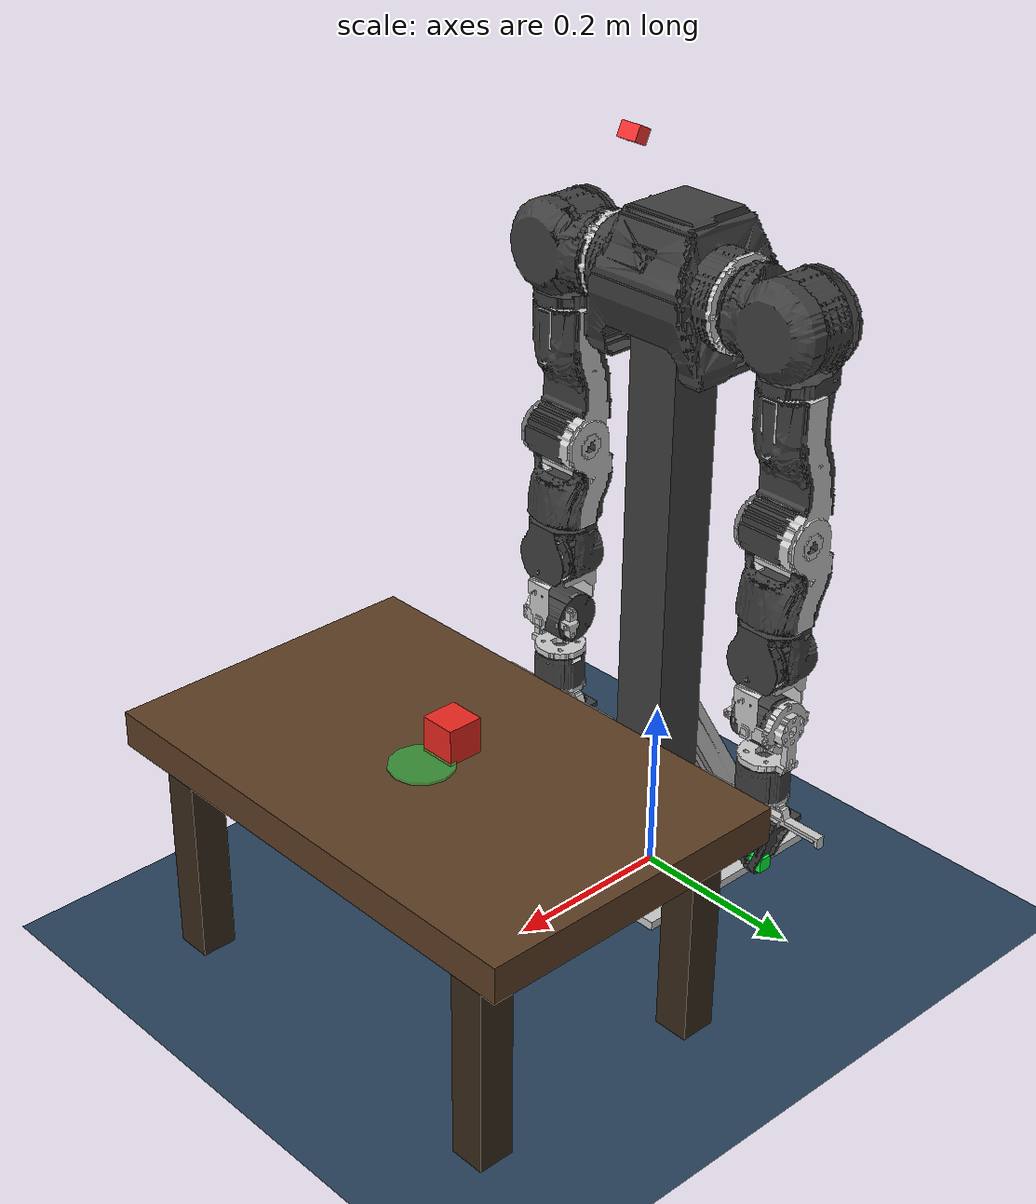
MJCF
<mujoco model="openarm_bimanual_pick_place scene">
  <include file="openarm_bimanual.xml"/>

  <statistic center="0.18 0 0.32" extent=".9" meansize="0.05"/>

  <visual>
    <headlight diffuse="0.6 0.6 0.6" ambient="0.3 0.3 0.3" specular="0 0 0"/>
    <rgba haze="0.15 0.25 0.35 1"/>
    <global azimuth="160" elevation="-10" offwidth="2048" offheight="1536"/>
    <quality shadowsize="4096"/>
  </visual>

  <asset>
    <texture
      type="skybox"
      builtin="gradient"
      rgb1="0.3 0.5 0.7"
      rgb2="0 0 0"
      width="512"
      height="3072"
    />
    <texture
      type="2d"
      name="groundplane"
      builtin="checker"
      mark="edge"
      rgb1="0.2 0.3 0.4"
      rgb2="0.1 0.2 0.3"
      markrgb="0.8 0.8 0.8"
      width="300"
      height="300"
    />
    <material
      name="groundplane"
      texture="groundplane"
      texuniform="true"
      texrepeat="5 5"
      reflectance="0.2"
    />
    <material name="tabletop" rgba="0.36 0.24 0.14 1"/>
    <material name="tableleg" rgba="0.22 0.16 0.1 1"/>
  </asset>

  <worldbody>
    <light pos="0 0 1.5" dir="0 0 -1" directional="true"/>
    <geom name="floor" size="0 0 0.05" type="plane" material="groundplane"/>

    <body name="task_table" pos="0 0 0">
      <geom
        name="task_table_top"
        type="box"
        pos="0.32 0.0 0.26"
        size="0.18 0.28 0.02"
        material="tabletop"
        friction="1.2 0.08 0.02"
      />
      <geom
        name="task_table_leg_fl"
        type="box"
        pos="0.46 0.22 0.12"
        size="0.02 0.02 0.12"
        material="tableleg"
      />
      <geom
        name="task_table_leg_fr"
        type="box"
        pos="0.46 -0.22 0.12"
        size="0.02 0.02 0.12"
        material="tableleg"
      />
      <geom
        name="task_table_leg_rl"
        type="box"
        pos="0.18 0.22 0.12"
        size="0.02 0.02 0.12"
        material="tableleg"
      />
      <geom
        name="task_table_leg_rr"
        type="box"
        pos="0.18 -0.22 0.12"
        size="0.02 0.02 0.12"
        material="tableleg"
      />
    </body>

    <body name="task_cube" pos="0.30 0.0 0.30">
      <freejoint name="task_cube_joint"/>
      <geom
        name="task_cube_geom"
        type="box"
        size="0.02 0.02 0.02"
        rgba="0.92 0.15 0.12 1"
        density="550"
        friction="2.0 0.2 0.05"
      />
    </body>

    <body name="place_target" mocap="true" pos="0.34 0.0 0.281">
      <geom
        name="place_target_marker"
        type="cylinder"
        size="0.035 0.002"
        rgba="0.15 0.85 0.3 0.55"
        contype="0"
        conaffinity="0"
      />
    </body>
  </worldbody>
</mujoco>

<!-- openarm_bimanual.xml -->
<mujoco model="openarm">
  <default>
    <joint stiffness="0" ref="0.0" />
    <default class="robot">
      <default class="motor_DM8009">
        <joint frictionloss="0.1" damping="0.4" limited="true" type="hinge" />
        <motor forcelimited="true" forcerange="-40 40" />
      </default>
      <default class="motor_DM4340">
        <joint frictionloss="0.1" damping="0.4" limited="true" type="hinge" />
        <motor forcelimited="true" forcerange="-27 27" />
      </default>
      <default class="motor_DM4310">
        <joint frictionloss="0.1" damping="0.4" limited="true" type="hinge" />
        <motor forcelimited="true" forcerange="-7 7" />
      </default>
      <default class="motor_finger">
        <joint limited="true" type="slide" damping="2" stiffness="0.5" />
        <position forcelimited="true" forcerange="-333 333" ctrllimited="true" ctrlrange="0 0.044"
          kp="100" />
      </default>
      <default class="collision">
        <geom material="collision_material" condim="3" conaffinity="1" priority="1" group="3"
          solref="0.005 1" friction="2 0.2 0.05" />
        <equality solimp="0.99 0.999 1e-05" solref="0.005 1" />
      </default>
      <default class="visual">
        <geom material="visualgeom" contype="0" conaffinity="0" group="2" />
      </default>
    </default>
  </default>

  <compiler angle="radian" meshdir="meshes" />

  <asset>
    <material name="default_material" rgba="0.7 0.7 0.7 1" />
    <material name="collision_material" rgba="1.0 0.28 0.1 0.9" />

    <mesh name="body_collision" file="collision/body/body_link0.stl" scale="0.001 0.001 0.001" />
    <mesh name="link0_collision" file="collision/arm/link0.stl" scale="0.001 0.001 0.001" />
    <mesh name="link0_collision_left" file="collision/arm/link0.stl" scale="0.001 -0.001 0.001" />
    <mesh name="link1_collision" file="collision/arm/link1.stl" scale="0.001 0.001 0.001" />
    <mesh name="link1_collision_left" file="collision/arm/link1.stl" scale="0.001 -0.001 0.001" />
    <mesh name="link2_collision" file="collision/arm/link2.stl" scale="0.001 0.001 0.001" />
    <mesh name="link2_collision_left" file="collision/arm/link2.stl" scale="0.001 -0.001 0.001" />
    <mesh name="link3_collision" file="collision/arm/link3.stl" scale="0.001 0.001 0.001" />
    <mesh name="link3_collision_left" file="collision/arm/link3.stl" scale="0.001 -0.001 0.001" />
    <mesh name="link4_collision" file="collision/arm/link4.stl" scale="0.001 0.001 0.001" />
    <mesh name="link5_collision" file="collision/arm/link5.stl" scale="0.001 0.001 0.001" />
    <mesh name="link5_collision_left" file="collision/arm/link5.stl" scale="0.001 -0.001 0.001" />
    <mesh name="link6_collision" file="collision/arm/link6.stl" scale="0.001 0.001 0.001" />
    <mesh name="link6_collision_left" file="collision/arm/link6.stl" scale="0.001 -0.001 0.001" />
    <mesh name="link7_collision" file="collision/arm/link7.stl" scale="0.001 0.001 0.001" />
    <mesh name="link7_collision_left" file="collision/arm/link7.stl" scale="0.001 -0.001 0.001" />
    <mesh name="hand_collision" file="collision/gripper/hand.stl" scale="0.001 0.001 0.001" />
    <mesh name="finger_collision" file="collision/gripper/finger.stl" scale="0.001 0.001 0.001" />
    <mesh name="finger_collision_left" file="collision/gripper/finger.stl"
      scale="0.001 -0.001 0.001" />

    <mesh name="body_link0_0.obj" file="visual/body/body_link0_0.obj" scale="0.001 0.001 0.001" />
    <mesh name="body_link0_1.obj" file="visual/body/body_link0_1.obj" scale="0.001 0.001 0.001" />
    <mesh name="body_link0_2.obj" file="visual/body/body_link0_2.obj" scale="0.001 0.001 0.001" />
    <mesh name="body_link0_3.obj" file="visual/body/body_link0_3.obj" scale="0.001 0.001 0.001" />
    <mesh name="body_link0_4.obj" file="visual/body/body_link0_4.obj" scale="0.001 0.001 0.001" />
    <mesh name="body_link0_5.obj" file="visual/body/body_link0_5.obj" scale="0.001 0.001 0.001" />

    <mesh name="link0_0.obj" file="visual/arm/link0_0.obj" scale="0.001 0.001 0.001" />
    <mesh name="link0_1.obj" file="visual/arm/link0_1.obj" scale="0.001 0.001 0.001" />
    <mesh name="link1_0.obj" file="visual/arm/link1_0.obj" scale="0.001 0.001 0.001" />
    <mesh name="link1_1.obj" file="visual/arm/link1_1.obj" scale="0.001 0.001 0.001" />
    <mesh name="link1_2.obj" file="visual/arm/link1_2.obj" scale="0.001 0.001 0.001" />
    <mesh name="link1_3.obj" file="visual/arm/link1_3.obj" scale="0.001 0.001 0.001" />
    <mesh name="link2_0.obj" file="visual/arm/link2_0.obj" scale="0.001 0.001 0.001" />
    <mesh name="link2_1.obj" file="visual/arm/link2_1.obj" scale="0.001 0.001 0.001" />
    <mesh name="link2_2.obj" file="visual/arm/link2_2.obj" scale="0.001 0.001 0.001" />
    <mesh name="link3_0.obj" file="visual/arm/link3_0.obj" scale="0.001 0.001 0.001" />
    <mesh name="link3_1.obj" file="visual/arm/link3_1.obj" scale="0.001 0.001 0.001" />
    <mesh name="link3_2.obj" file="visual/arm/link3_2.obj" scale="0.001 0.001 0.001" />
    <mesh name="link4_0.obj" file="visual/arm/link4_0.obj" scale="0.001 0.001 0.001" />
    <mesh name="link4_1.obj" file="visual/arm/link4_1.obj" scale="0.001 0.001 0.001" />
    <mesh name="link4_2.obj" file="visual/arm/link4_2.obj" scale="0.001 0.001 0.001" />
    <mesh name="link5_0.obj" file="visual/arm/link5_0.obj" scale="0.001 0.001 0.001" />
    <mesh name="link5_1.obj" file="visual/arm/link5_1.obj" scale="0.001 0.001 0.001" />
    <mesh name="link5_2.obj" file="visual/arm/link5_2.obj" scale="0.001 0.001 0.001" />
    <mesh name="link6_0.obj" file="visual/arm/link6_0.obj" scale="0.001 0.001 0.001" />
    <mesh name="link6_1.obj" file="visual/arm/link6_1.obj" scale="0.001 0.001 0.001" />
    <mesh name="link6_0_left.obj" file="visual/arm/link6_0.obj" scale="0.001 -0.001 0.001" />
    <mesh name="link6_1_left.obj" file="visual/arm/link6_1.obj" scale="0.001 -0.001 0.001" />
    <mesh name="link7_0.obj" file="visual/arm/link7_0.obj" scale="0.001 0.001 0.001" />
    <mesh name="link7_1.obj" file="visual/arm/link7_1.obj" scale="0.001 0.001 0.001" />
    <mesh name="link7_0_left.obj" file="visual/arm/link7_0.obj" scale="0.001 -0.001 0.001" />
    <mesh name="link7_1_left.obj" file="visual/arm/link7_1.obj" scale="0.001 -0.001 0.001" />

    <mesh name="hand_0.obj" file="visual/gripper/hand_0.obj" scale="0.001 0.001 0.001" />
    <mesh name="hand_1.obj" file="visual/gripper/hand_1.obj" scale="0.001 0.001 0.001" />
    <mesh name="finger_0.obj" file="visual/gripper/finger_0.obj" scale="0.001 0.001 0.001" />
    <mesh name="finger_0_flip.obj" file="visual/gripper/finger_0.obj" scale="0.001 -0.001 0.001" />
    <mesh name="finger_1.obj" file="visual/gripper/finger_1.obj" scale="0.001 0.001 0.001" />
    <mesh name="finger_1_flip.obj" file="visual/gripper/finger_1.obj" scale="0.001 -0.001 0.001" />

    <material name="matte_black" rgba="0.24705882 0.24705882 0.24705882 1.0"
      reflectance="0.05098039000000001" shininess="0.5" />
    <material name="metal_silver" rgba="0.79607843 0.79607843 0.79607843 1.0" reflectance="1.0"
      shininess="1.0" />
  </asset>

  <worldbody>

    <body name="openarm_body_link0" pos="0 0 0" quat="1.0 0.0 0.0 0.0">
      <inertial pos="0.0 0.0 0.0" quat="1.0 0.0 0.0 0.0" mass="13.89"
        diaginertia="1.653 1.653 0.051" />
      <geom name="openarm_body_link0_collision" pos="0.0 0.0 0.0" quat="1.0 0.0 0.0 0.0" type="mesh"
        mesh="body_link0_3.obj" class="collision" />
      <geom name="openarm_body_link0_visual_0" pos="0.0 0.0 0.0" quat="1.0 0.0 0.0 0.0"
        material="matte_black" type="mesh" mesh="body_link0_0.obj" class="visual" />
      <geom name="openarm_body_link0_visual_1" pos="0.0 0.0 0.0" quat="1.0 0.0 0.0 0.0"
        material="metal_silver" type="mesh" mesh="body_link0_1.obj" class="visual" />
      <geom name="openarm_body_link0_visual_2" pos="0.0 0.0 0.0" quat="1.0 0.0 0.0 0.0"
        material="matte_black" type="mesh" mesh="body_link0_2.obj" class="visual" />
      <geom name="openarm_body_link0_visual_3" pos="0.0 0.0 0.0" quat="1.0 0.0 0.0 0.0"
        material="matte_black" type="mesh" mesh="body_link0_3.obj" class="visual" />
      <geom name="openarm_body_link0_visual_4" pos="0.0 0.0 0.0" quat="1.0 0.0 0.0 0.0"
        material="metal_silver" type="mesh" mesh="body_link0_4.obj" class="visual" />
      <geom name="openarm_body_link0_visual_5" pos="0.0 0.0 0.0" quat="1.0 0.0 0.0 0.0"
        material="matte_black" type="mesh" mesh="body_link0_5.obj" class="visual" />
      <camera name="head_camera" pos="0.07 0.0 0.86"
        quat="0.697790 0.158863 -0.158863 -0.697790" fovy="75.0" />
      <body name="head_camera_frame" pos="0.07 0.0 0.86"
        quat="0.697790 0.158863 -0.158863 -0.697790">
        <geom name="head_camera_frame_marker" type="box" size="0.012 0.008 0.008"
          rgba="1.0 0.2 0.2 0.9" contype="0" conaffinity="0" density="0" group="1" />
      </body>
      <body name="openarm_left_link0" pos="0.0 0.031 0.698"
        quat="0.7071054825112363 -0.7071080798594735 0.0 0.0">
        <inertial pos="-0.0009483362816297526 0.0001580207020448382 0.03076860287587199"
          quat="1.0 0.0 0.0 0.0" mass="1.1432284943239561" diaginertia="0.001128 0.000962 0.00147" />
        <geom name="openarm_left_link0_collision" pos="0.0 0.0 0.0" quat="1.0 0.0 0.0 0.0"
          type="mesh" mesh="link0_collision_left" class="collision" />
        <geom name="openarm_left_link0_visual_0" pos="0.0 0.0 0.0" quat="1.0 0.0 0.0 0.0"
          material="metal_silver" type="mesh" mesh="link0_0.obj" class="visual" />
        <geom name="openarm_left_link0_visual_1" pos="0.0 0.0 0.0" quat="1.0 0.0 0.0 0.0"
          material="matte_black" type="mesh" mesh="link0_1.obj" class="visual" />
        <body name="openarm_left_link1" pos="0.0 0.0 0.0625" quat="1.0 0.0 0.0 0.0">
          <joint name="openarm_left_joint1" type="hinge" ref="0.0" class="motor_DM8009"
            range="-3.490659 1.3962629999999998" axis="0 0 1" />
          <inertial pos="0.0011467657911800769 3.319987657026362e-05 0.05395284380736254"
            quat="1.0 0.0 0.0 0.0" mass="1.1416684646202298"
            diaginertia="0.001567 0.001273 0.001016" />
          <geom name="openarm_left_link1_collision" pos="-0.0 0.0 -0.0625" quat="1.0 0.0 0.0 0.0"
            type="mesh" mesh="link1_collision_left" class="collision" />
          <geom name="openarm_left_link1_visual_0" pos="-0.0 0.0 -0.0625" quat="1.0 0.0 0.0 0.0"
            material="matte_black" type="mesh" mesh="link1_0.obj" class="visual" />
          <geom name="openarm_left_link1_visual_2" pos="-0.0 0.0 -0.0625" quat="1.0 0.0 0.0 0.0"
            material="matte_black" type="mesh" mesh="link1_2.obj" class="visual" />
          <geom name="openarm_left_link1_visual_3" pos="-0.0 0.0 -0.0625" quat="1.0 0.0 0.0 0.0"
            material="matte_black" type="mesh" mesh="link1_3.obj" class="visual" />
          <body name="openarm_left_link2" pos="-0.0301 0.0 0.06"
            quat="0.7071067811882787 -0.7071067811848163 0.0 0.0">
            <joint name="openarm_left_joint2" type="hinge" ref="0.0" class="motor_DM8009"
              range="-3.3161253267948965 0.17453267320510335" axis="-1 0 0" />
            <inertial pos="0.00839629182351943 -2.0145102027597523e-08 0.03256649300522363"
              quat="1.0 0.0 0.0 0.0" mass="0.2775092746011571"
              diaginertia="0.000359 0.000376 0.000232" />
            <geom name="openarm_left_link2_collision" pos="0.0301 0.0 -0.1225"
              quat="1.0 0.0 0.0 0.0" type="mesh" mesh="link2_collision_left" class="collision" />
            <geom name="openarm_left_link2_visual_0" pos="0.0301 0.0 -0.1225" quat="1.0 0.0 0.0 0.0"
              material="matte_black" type="mesh" mesh="link2_0.obj" class="visual" />
            <geom name="openarm_left_link2_visual_1" pos="0.0301 0.0 -0.1225" quat="1.0 0.0 0.0 0.0"
              material="matte_black" type="mesh" mesh="link2_1.obj" class="visual" />
            <geom name="openarm_left_link2_visual_2" pos="0.0301 0.0 -0.1225" quat="1.0 0.0 0.0 0.0"
              material="matte_black" type="mesh" mesh="link2_2.obj" class="visual" />
            <body name="openarm_left_link3" pos="0.0301 0.0 0.06625" quat="1.0 0.0 0.0 0.0">
              <joint name="openarm_left_joint3" type="hinge" ref="0.0" class="motor_DM4340"
                range="-1.570796 1.570796" axis="0 0 1" />
              <inertial pos="-0.002104752099628911 0.0005549085042607548 0.08847470545721961"
                quat="1.0 0.0 0.0 0.0" mass="1.073863338202347"
                diaginertia="0.004372 0.004319 0.000661" />
              <geom name="openarm_left_link3_collision" pos="-0.0 -0.0 -0.18875"
                quat="1.0 0.0 0.0 0.0" type="mesh" mesh="link3_collision_left" class="collision" />
              <geom name="openarm_left_link3_visual_0" pos="-0.0 -0.0 -0.18875"
                quat="1.0 0.0 0.0 0.0" material="matte_black" type="mesh" mesh="link3_0.obj"
                class="visual" />
              <geom name="openarm_left_link3_visual_1" pos="-0.0 -0.0 -0.18875"
                quat="1.0 0.0 0.0 0.0" material="matte_black" type="mesh" mesh="link3_1.obj"
                class="visual" />
              <geom name="openarm_left_link3_visual_2" pos="-0.0 -0.0 -0.18875"
                quat="1.0 0.0 0.0 0.0" material="metal_silver" type="mesh" mesh="link3_2.obj"
                class="visual" />
              <body name="openarm_left_link4" pos="-0.0 0.0315 0.15375" quat="1.0 0.0 0.0 0.0">
                <joint name="openarm_left_joint4" type="hinge" ref="0.0" class="motor_DM4340"
                  range="0.0 2.443461" axis="0 1 0" />
                <inertial pos="-0.0029006831074562967 -0.03030575826634669 0.06339637422196209"
                  quat="1.0 0.0 0.0 0.0" mass="0.6348534566833373"
                  diaginertia="0.001577 0.001346 0.001104" />
                <geom name="openarm_left_link4_collision" pos="0.0 -0.0315 -0.3425"
                  quat="1.0 0.0 0.0 0.0" type="mesh" mesh="link4_collision" class="collision" />
                <geom name="openarm_left_link4_visual_0" pos="0.0 -0.0315 -0.3425"
                  quat="1.0 0.0 0.0 0.0" material="matte_black" type="mesh" mesh="link4_0.obj"
                  class="visual" />
                <geom name="openarm_left_link4_visual_1" pos="0.0 -0.0315 -0.3425"
                  quat="1.0 0.0 0.0 0.0" material="metal_silver" type="mesh" mesh="link4_1.obj"
                  class="visual" />
                <geom name="openarm_left_link4_visual_2" pos="0.0 -0.0315 -0.3425"
                  quat="1.0 0.0 0.0 0.0" material="matte_black" type="mesh" mesh="link4_2.obj"
                  class="visual" />
                <body name="openarm_left_link5" pos="0.0 -0.0315 0.0955" quat="1.0 0.0 0.0 0.0">
                  <joint name="openarm_left_joint5" type="hinge" ref="0.0" class="motor_DM4310"
                    range="-1.570796 1.570796" axis="0 0 1" />
                  <inertial pos="-0.003049665024221911 0.0008866902457326625 0.043079803024980934"
                    quat="1.0 0.0 0.0 0.0" mass="0.6156588026168502"
                    diaginertia="0.000423 0.000445 0.000324" />
                  <geom name="openarm_left_link5_collision" pos="-0.0 -0.0 -0.438"
                    quat="1.0 0.0 0.0 0.0" type="mesh" mesh="link5_collision_left" class="collision" />
                  <geom name="openarm_left_link5_visual_0" pos="-0.0 -0.0 -0.438"
                    quat="1.0 0.0 0.0 0.0" material="matte_black" type="mesh" mesh="link5_0.obj"
                    class="visual" />
                  <geom name="openarm_left_link5_visual_1" pos="-0.0 -0.0 -0.438"
                    quat="1.0 0.0 0.0 0.0" material="metal_silver" type="mesh" mesh="link5_1.obj"
                    class="visual" />
                  <geom name="openarm_left_link5_visual_2" pos="-0.0 -0.0 -0.438"
                    quat="1.0 0.0 0.0 0.0" material="matte_black" type="mesh" mesh="link5_2.obj"
                    class="visual" />
                  <body name="openarm_left_link6" pos="0.0375 0.0 0.1205" quat="1.0 0.0 0.0 0.0">
                    <joint name="openarm_left_joint6" type="hinge" ref="0.0" class="motor_DM4310"
                      range="-0.785398 0.785398" axis="1 0 0" />
                    <inertial
                      pos="-0.037136587005447405 0.00033230528343419053 -9.498374522309838e-05"
                      quat="1.0 0.0 0.0 0.0" mass="0.475202773187987"
                      diaginertia="0.000143 0.000157 0.000159" />
                    <geom name="openarm_left_link6_collision" pos="-0.0375 -0.0 -0.5585"
                      quat="1.0 0.0 0.0 0.0" type="mesh" mesh="link6_collision_left"
                      class="collision" />
                    <geom name="openarm_left_link6_visual_0" pos="-0.0375 -0.0 -0.5585"
                      quat="1.0 0.0 0.0 0.0" material="matte_black" type="mesh"
                      mesh="link6_0_left.obj" class="visual" />
                    <geom name="openarm_left_link6_visual_1" pos="-0.0375 -0.0 -0.5585"
                      quat="1.0 0.0 0.0 0.0" material="metal_silver" type="mesh"
                      mesh="link6_1_left.obj" class="visual" />
                    <body name="openarm_left_link7" pos="-0.0375 0.0 0.0" quat="1.0 0.0 0.0 0.0">
                      <joint name="openarm_left_joint7" type="hinge" ref="0.0" class="motor_DM4310"
                        range="-1.570796 1.570796" axis="0 -1 0" />
                      <inertial pos="6.875510271106056e-05 -0.01766175250761268 0.06651945409987448"
                        quat="1.0 0.0 0.0 0.0" mass="0.4659771327380578"
                        diaginertia="0.000639 0.000497 0.000342" />
                      <geom name="openarm_left_link7_collision" pos="0.0 -0.0 -0.5585"
                        quat="1.0 0.0 0.0 0.0" type="mesh" mesh="link7_collision_left"
                        class="collision" />
                      <geom name="openarm_left_link7_visual_0" pos="0.0 -0.0 -0.5585"
                        quat="1.0 0.0 0.0 0.0" material="metal_silver" type="mesh"
                        mesh="link7_0_left.obj" class="visual" />
                      <geom name="openarm_left_link7_visual_1" pos="0.0 -0.0 -0.5585"
                        quat="1.0 0.0 0.0 0.0" material="matte_black" type="mesh"
                        mesh="link7_1_left.obj" class="visual" />
                      <body name="openarm_left_link8" pos="1e-06 0.0205 0.0" quat="1.0 0.0 0.0 0.0">
                        <body name="openarm_left_hand" pos="0 -0.025 0.1001" quat="1.0 0.0 0.0 0.0">
                          <inertial pos="0.0 0.002 0.01" quat="1.0 0.0 0.0 0.0" mass="0.15"
                            diaginertia="0.0001 0.00025 0.00017" />
                          <camera name="left_wrist_camera" pos="0.065 0.0 -0.015"
                            quat="0.212631 0.674379 0.674379 0.212631" fovy="120.0" />
                          <body name="left_wrist_camera_frame" pos="0.065 0.0 -0.015"
                            quat="0.212631 0.674379 0.674379 0.212631">
                            <geom name="left_wrist_camera_frame_marker" type="box"
                              size="0.01 0.007 0.007" rgba="0.15 0.8 1.0 0.9"
                              contype="0" conaffinity="0" density="0" group="1" />
                          </body>
                          <geom name="openarm_left_hand_collision" pos="0.0 0.005 -0.6585"
                            quat="1.0 0.0 0.0 0.0" type="mesh" mesh="hand_collision"
                            class="collision" />
                          <geom name="openarm_left_hand_visual_0" pos="0.0 0.005 -0.6585"
                            quat="1.0 0.0 0.0 0.0" material="metal_silver" type="mesh"
                            mesh="hand_0.obj" class="visual" />
                          <geom name="openarm_left_hand_visual_1" pos="0.0 0.005 -0.6585"
                            quat="1.0 0.0 0.0 0.0" material="metal_silver" type="mesh"
                            mesh="hand_1.obj" class="visual" />
                          <body name="openarm_left_hand_tcp" pos="0 -0.0 0.08"
                            quat="1.0 0.0 0.0 0.0">
                            <geom name="openarm_left_hand_tcp_marker" type="box"
                              size="0.008 0.008 0.008" rgba="0.0 1.0 0.2 0.9"
                              contype="0" conaffinity="0" density="0" group="1" />
                          </body>
                          <body name="openarm_left_right_finger" pos="0 0.00 0.015"
                            quat="1.0 0.0 0.0 0.0">
                            <joint name="openarm_left_finger_joint1" type="slide" ref="0.0"
                              class="motor_finger" range="0.0 0.044" axis="0 -1 0" />
                            <inertial pos="0.0064528 -0.01702 0.0219685" quat="1.0 0.0 0.0 0.0"
                              mass="0.03602545343277134"
                              diaginertia="2.3749999999999997e-06 2.3749999999999997e-06 7.5e-07" />
                            <geom name="openarm_left_right_finger_collision"
                              pos="0.0 0.05 -0.673001" quat="1.0 0.0 0.0 0.0" type="mesh"
                              mesh="finger_collision_left" class="collision" />
                            <geom name="openarm_left_right_finger_visual_0" pos="0.0 0.05 -0.673001"
                              quat="1.0 0.0 0.0 0.0" material="default_material" type="mesh"
                              mesh="finger_0_flip.obj" class="visual" />
                            <geom name="openarm_left_right_finger_visual_1" pos="0.0 0.05 -0.673001"
                              quat="1.0 0.0 0.0 0.0" material="matte_black" type="mesh"
                              mesh="finger_1_flip.obj" class="visual" />
                          </body>
                          <body name="openarm_left_left_finger" pos="0 0.012 0.015"
                            quat="1.0 0.0 0.0 0.0">
                            <joint name="openarm_left_finger_joint2" type="slide" ref="0.0"
                              class="motor_finger" range="0.0 0.044" axis="0 1 0" />
                            <inertial pos="0.0064528 0.01702 0.0219685" quat="1.0 0.0 0.0 0.0"
                              mass="0.03602545343277134"
                              diaginertia="2.3749999999999997e-06 2.3749999999999997e-06 7.5e-07" />
                            <geom name="openarm_left_left_finger_collision"
                              pos="0.0 -0.05 -0.673001" quat="1.0 0.0 0.0 0.0" type="mesh"
                              mesh="finger_collision" class="collision" />
                            <geom name="openarm_left_left_finger_visual_0" pos="0.0 -0.05 -0.673001"
                              quat="1.0 0.0 0.0 0.0" material="default_material" type="mesh"
                              mesh="finger_0.obj" class="visual" />
                            <geom name="openarm_left_left_finger_visual_1" pos="0.0 -0.05 -0.673001"
                              quat="1.0 0.0 0.0 0.0" material="matte_black" type="mesh"
                              mesh="finger_1.obj" class="visual" />
                          </body>
                        </body>
                      </body>
                    </body>
                  </body>
                </body>
              </body>
            </body>
          </body>
        </body>
      </body>
      <body name="openarm_right_link0" pos="0.0 -0.031 0.698"
        quat="0.7071054825112363 0.7071080798594735 0.0 0.0">
        <inertial pos="-0.0009483362816297526 0.0001580207020448382 0.03076860287587199"
          quat="1.0 0.0 0.0 0.0" mass="1.1432284943239561" diaginertia="0.001128 0.000962 0.00147" />
        <geom name="openarm_right_link0_collision" pos="0.0 0.0 0.0" quat="1.0 0.0 0.0 0.0"
          type="mesh" mesh="link0_collision" class="collision" />
        <geom name="openarm_right_link0_visual_0" pos="0.0 0.0 0.0" quat="1.0 0.0 0.0 0.0"
          material="metal_silver" type="mesh" mesh="link0_0.obj" class="visual" />
        <geom name="openarm_right_link0_visual_1" pos="0.0 0.0 0.0" quat="1.0 0.0 0.0 0.0"
          material="matte_black" type="mesh" mesh="link0_1.obj" class="visual" />
        <body name="openarm_right_link1" pos="0.0 0.0 0.0625" quat="1.0 0.0 0.0 0.0">
          <joint name="openarm_right_joint1" type="hinge" ref="0.0" class="motor_DM8009"
            range="-1.396263 3.490659" axis="0 0 1" />
          <inertial pos="0.0011467657911800769 3.319987657026362e-05 0.05395284380736254"
            quat="1.0 0.0 0.0 0.0" mass="1.1416684646202298"
            diaginertia="0.001567 0.001273 0.001016" />
          <geom name="openarm_right_link1_collision" pos="-0.0 0.0 -0.0625" quat="1.0 0.0 0.0 0.0"
            type="mesh" mesh="link1_collision" class="collision" />
          <geom name="openarm_right_link1_visual_0" pos="-0.0 0.0 -0.0625" quat="1.0 0.0 0.0 0.0"
            material="matte_black" type="mesh" mesh="link1_0.obj" class="visual" />
          <geom name="openarm_right_link1_visual_2" pos="-0.0 0.0 -0.0625" quat="1.0 0.0 0.0 0.0"
            material="matte_black" type="mesh" mesh="link1_2.obj" class="visual" />
          <geom name="openarm_right_link1_visual_3" pos="-0.0 0.0 -0.0625" quat="1.0 0.0 0.0 0.0"
            material="matte_black" type="mesh" mesh="link1_3.obj" class="visual" />
          <body name="openarm_right_link2" pos="-0.0301 0.0 0.06"
            quat="0.7071067811882787 0.7071067811848163 0.0 0.0">
            <joint name="openarm_right_joint2" type="hinge" ref="0.0" class="motor_DM8009"
              range="-0.17453267320510335 3.3161253267948965" axis="-1 0 0" />
            <inertial pos="0.00839629182351943 -2.0145102027597523e-08 0.03256649300522363"
              quat="1.0 0.0 0.0 0.0" mass="0.2775092746011571"
              diaginertia="0.000359 0.000376 0.000232" />
            <geom name="openarm_right_link2_collision" pos="0.0301 0.0 -0.1225"
              quat="1.0 0.0 0.0 0.0" type="mesh" mesh="link2_collision" class="collision" />
            <geom name="openarm_right_link2_visual_0" pos="0.0301 0.0 -0.1225"
              quat="1.0 0.0 0.0 0.0" material="matte_black" type="mesh" mesh="link2_0.obj"
              class="visual" />
            <geom name="openarm_right_link2_visual_1" pos="0.0301 0.0 -0.1225"
              quat="1.0 0.0 0.0 0.0" material="matte_black" type="mesh" mesh="link2_1.obj"
              class="visual" />
            <geom name="openarm_right_link2_visual_2" pos="0.0301 0.0 -0.1225"
              quat="1.0 0.0 0.0 0.0" material="matte_black" type="mesh" mesh="link2_2.obj"
              class="visual" />
            <body name="openarm_right_link3" pos="0.0301 0.0 0.06625" quat="1.0 0.0 0.0 0.0">
              <joint name="openarm_right_joint3" type="hinge" ref="0.0" class="motor_DM4340"
                range="-1.570796 1.570796" axis="0 0 1" />
              <inertial pos="-0.002104752099628911 0.0005549085042607548 0.08847470545721961"
                quat="1.0 0.0 0.0 0.0" mass="1.073863338202347"
                diaginertia="0.004372 0.004319 0.000661" />
              <geom name="openarm_right_link3_collision" pos="-0.0 -0.0 -0.18875"
                quat="1.0 0.0 0.0 0.0" type="mesh" mesh="link3_collision" class="collision" />
              <geom name="openarm_right_link3_visual_0" pos="-0.0 -0.0 -0.18875"
                quat="1.0 0.0 0.0 0.0" material="matte_black" type="mesh" mesh="link3_0.obj"
                class="visual" />
              <geom name="openarm_right_link3_visual_1" pos="-0.0 -0.0 -0.18875"
                quat="1.0 0.0 0.0 0.0" material="matte_black" type="mesh" mesh="link3_1.obj"
                class="visual" />
              <geom name="openarm_right_link3_visual_2" pos="-0.0 -0.0 -0.18875"
                quat="1.0 0.0 0.0 0.0" material="metal_silver" type="mesh" mesh="link3_2.obj"
                class="visual" />
              <body name="openarm_right_link4" pos="-0.0 0.0315 0.15375" quat="1.0 0.0 0.0 0.0">
                <joint name="openarm_right_joint4" type="hinge" ref="0.0" class="motor_DM4340"
                  range="0.0 2.443461" axis="0 1 0" />
                <inertial pos="-0.0029006831074562967 -0.03030575826634669 0.06339637422196209"
                  quat="1.0 0.0 0.0 0.0" mass="0.6348534566833373"
                  diaginertia="0.001577 0.001346 0.001104" />
                <geom name="openarm_right_link4_collision" pos="0.0 -0.0315 -0.3425"
                  quat="1.0 0.0 0.0 0.0" type="mesh" mesh="link4_collision" class="collision" />
                <geom name="openarm_right_link4_visual_0" pos="0.0 -0.0315 -0.3425"
                  quat="1.0 0.0 0.0 0.0" material="matte_black" type="mesh" mesh="link4_0.obj"
                  class="visual" />
                <geom name="openarm_right_link4_visual_1" pos="0.0 -0.0315 -0.3425"
                  quat="1.0 0.0 0.0 0.0" material="metal_silver" type="mesh" mesh="link4_1.obj"
                  class="visual" />
                <geom name="openarm_right_link4_visual_2" pos="0.0 -0.0315 -0.3425"
                  quat="1.0 0.0 0.0 0.0" material="matte_black" type="mesh" mesh="link4_2.obj"
                  class="visual" />
                <body name="openarm_right_link5" pos="0.0 -0.0315 0.0955" quat="1.0 0.0 0.0 0.0">
                  <joint name="openarm_right_joint5" type="hinge" ref="0.0" class="motor_DM4310"
                    range="-1.570796 1.570796" axis="0 0 1" />
                  <inertial pos="-0.003049665024221911 0.0008866902457326625 0.043079803024980934"
                    quat="1.0 0.0 0.0 0.0" mass="0.6156588026168502"
                    diaginertia="0.000423 0.000445 0.000324" />
                  <geom name="openarm_right_link5_collision" pos="-0.0 -0.0 -0.438"
                    quat="1.0 0.0 0.0 0.0" type="mesh" mesh="link5_collision" class="collision" />
                  <geom name="openarm_right_link5_visual_0" pos="-0.0 -0.0 -0.438"
                    quat="1.0 0.0 0.0 0.0" material="matte_black" type="mesh" mesh="link5_0.obj"
                    class="visual" />
                  <geom name="openarm_right_link5_visual_1" pos="-0.0 -0.0 -0.438"
                    quat="1.0 0.0 0.0 0.0" material="metal_silver" type="mesh" mesh="link5_1.obj"
                    class="visual" />
                  <geom name="openarm_right_link5_visual_2" pos="-0.0 -0.0 -0.438"
                    quat="1.0 0.0 0.0 0.0" material="matte_black" type="mesh" mesh="link5_2.obj"
                    class="visual" />
                  <body name="openarm_right_link6" pos="0.0375 0.0 0.1205" quat="1.0 0.0 0.0 0.0">
                    <joint name="openarm_right_joint6" type="hinge" ref="0.0" class="motor_DM4310"
                      range="-0.785398 0.785398" axis="1 0 0" />
                    <inertial
                      pos="-0.037136587005447405 0.00033230528343419053 -9.498374522309838e-05"
                      quat="1.0 0.0 0.0 0.0" mass="0.475202773187987"
                      diaginertia="0.000143 0.000157 0.000159" />
                    <geom name="openarm_right_link6_collision" pos="-0.0375 -0.0 -0.5585"
                      quat="1.0 0.0 0.0 0.0" type="mesh" mesh="link6_collision" class="collision" />
                    <geom name="openarm_right_link6_visual_0" pos="-0.0375 -0.0 -0.5585"
                      quat="1.0 0.0 0.0 0.0" material="matte_black" type="mesh" mesh="link6_0.obj"
                      class="visual" />
                    <geom name="openarm_right_link6_visual_1" pos="-0.0375 -0.0 -0.5585"
                      quat="1.0 0.0 0.0 0.0" material="metal_silver" type="mesh" mesh="link6_1.obj"
                      class="visual" />
                    <body name="openarm_right_link7" pos="-0.0375 0.0 0.0" quat="1.0 0.0 0.0 0.0">
                      <joint name="openarm_right_joint7" type="hinge" ref="0.0" class="motor_DM4310"
                        range="-1.570796 1.570796" axis="0 1 0" />
                      <inertial pos="6.875510271106056e-05 -0.01766175250761268 0.06651945409987448"
                        quat="1.0 0.0 0.0 0.0" mass="0.4659771327380578"
                        diaginertia="0.000639 0.000497 0.000342" />
                      <geom name="openarm_right_link7_collision" pos="0.0 -0.0 -0.5585"
                        quat="1.0 0.0 0.0 0.0" type="mesh" mesh="link7_collision" class="collision" />
                      <geom name="openarm_right_link7_visual_0" pos="0.0 -0.0 -0.5585"
                        quat="1.0 0.0 0.0 0.0" material="metal_silver" type="mesh"
                        mesh="link7_0.obj" class="visual" />
                      <geom name="openarm_right_link7_visual_1" pos="0.0 -0.0 -0.5585"
                        quat="1.0 0.0 0.0 0.0" material="matte_black" type="mesh" mesh="link7_1.obj"
                        class="visual" />
                      <body name="openarm_right_link8" pos="1e-06 0.0205 0.0" quat="1.0 0.0 0.0 0.0">
                        <body name="openarm_right_hand" pos="0 -0.025 0.1001" quat="1.0 0.0 0.0 0.0">
                          <inertial pos="0.0 0.002 0.01" quat="1.0 0.0 0.0 0.0" mass="0.15"
                            diaginertia="0.0001 0.00025 0.00017" />
                          <camera name="right_wrist_camera" pos="0.065 0.0 -0.015"
                            quat="0.212631 0.674379 0.674379 0.212631" fovy="120.0" />
                          <body name="right_wrist_camera_frame" pos="0.065 0.0 -0.015"
                            quat="0.212631 0.674379 0.674379 0.212631">
                            <geom name="right_wrist_camera_frame_marker" type="box"
                              size="0.01 0.007 0.007" rgba="1.0 0.75 0.15 0.9"
                              contype="0" conaffinity="0" density="0" group="1" />
                          </body>
                          <geom name="openarm_right_hand_collision" pos="0.0 0.005 -0.6585"
                            quat="1.0 0.0 0.0 0.0" type="mesh" mesh="hand_collision"
                            class="collision" />
                          <geom name="openarm_right_hand_visual_0" pos="0.0 0.005 -0.6585"
                            quat="1.0 0.0 0.0 0.0" material="metal_silver" type="mesh"
                            mesh="hand_0.obj" class="visual" />
                          <geom name="openarm_right_hand_visual_1" pos="0.0 0.005 -0.6585"
                            quat="1.0 0.0 0.0 0.0" material="metal_silver" type="mesh"
                            mesh="hand_1.obj" class="visual" />
                          <body name="openarm_right_hand_tcp" pos="0 -0.0 0.08"
                            quat="1.0 0.0 0.0 0.0">
                            <geom name="openarm_right_hand_tcp_marker" type="box"
                              size="0.008 0.008 0.008" rgba="1.0 0.95 0.0 0.9"
                              contype="0" conaffinity="0" density="0" group="1" />
                          </body>
                          <body name="openarm_right_right_finger" pos="0 0.00 0.015"
                            quat="1.0 0.0 0.0 0.0">
                            <joint name="openarm_right_finger_joint1" type="slide" ref="0.0"
                              class="motor_finger" range="0.0 0.044" axis="0 -1 0" />
                            <inertial pos="0.0064528 -0.01702 0.0219685" quat="1.0 0.0 0.0 0.0"
                              mass="0.03602545343277134"
                              diaginertia="2.3749999999999997e-06 2.3749999999999997e-06 7.5e-07" />
                            <geom name="openarm_right_right_finger_collision"
                              pos="0.0 0.05 -0.673001" quat="1.0 0.0 0.0 0.0" type="mesh"
                              mesh="finger_collision_left" class="collision" />
                            <geom name="openarm_right_right_finger_visual_0"
                              pos="0.0 0.05 -0.673001" quat="1.0 0.0 0.0 0.0"
                              material="default_material" type="mesh" mesh="finger_0_flip.obj"
                              class="visual" />
                            <geom name="openarm_right_right_finger_visual_1"
                              pos="0.0 0.05 -0.673001" quat="1.0 0.0 0.0 0.0" material="matte_black"
                              type="mesh" mesh="finger_1_flip.obj" class="visual" />
                          </body>
                          <body name="openarm_right_left_finger" pos="0 0.012 0.015"
                            quat="1.0 0.0 0.0 0.0">
                            <joint name="openarm_right_finger_joint2" type="slide" ref="0.0"
                              class="motor_finger" range="0.0 0.044" axis="0 1 0" />
                            <inertial pos="0.0064528 0.01702 0.0219685" quat="1.0 0.0 0.0 0.0"
                              mass="0.03602545343277134"
                              diaginertia="2.3749999999999997e-06 2.3749999999999997e-06 7.5e-07" />
                            <geom name="openarm_right_left_finger_collision"
                              pos="0.0 -0.05 -0.673001" quat="1.0 0.0 0.0 0.0" type="mesh"
                              mesh="finger_collision" class="collision" />
                            <geom name="openarm_right_left_finger_visual_0"
                              pos="0.0 -0.05 -0.673001" quat="1.0 0.0 0.0 0.0"
                              material="default_material" type="mesh" mesh="finger_0.obj"
                              class="visual" />
                            <geom name="openarm_right_left_finger_visual_1"
                              pos="0.0 -0.05 -0.673001" quat="1.0 0.0 0.0 0.0"
                              material="matte_black" type="mesh" mesh="finger_1.obj" class="visual" />
                          </body>
                        </body>
                      </body>
                    </body>
                  </body>
                </body>
              </body>
            </body>
          </body>
        </body>
      </body>
    </body>
    <site name="world_site" pos="0 0 0" quat="1 0 0 0" />
    <camera name="front_camera" mode="track" fovy="90.0"
      quat="4.329780281177467e-17 4.329780281177466e-17 0.7071067811865475 0.7071067811865476"
      pos="0.0 2.0 0.5" />
    <camera name="side_camera" mode="track" fovy="90.0"
      quat="-0.5 -0.4999999999999999 0.5 0.5000000000000001" pos="-2.0 0.0 0.5" />

  </worldbody>

  <tendon>
    <fixed name="split_right">
      <joint joint="openarm_right_finger_joint1" coef="0.5" />
      <joint joint="openarm_right_finger_joint2" coef="0.5" />
    </fixed>
    <fixed name="split_left">
      <joint joint="openarm_left_finger_joint1" coef="0.5" />
      <joint joint="openarm_left_finger_joint2" coef="0.5" />
    </fixed>
  </tendon>
  <equality>
    <joint joint1="openarm_right_finger_joint1" joint2="openarm_right_finger_joint2"
      solimp="0.95 0.99 0.001" solref="0.005 1" />
    <joint joint1="openarm_left_finger_joint1" joint2="openarm_left_finger_joint2"
      solimp="0.95 0.99 0.001" solref="0.005 1" />
  </equality>

  <actuator>
    <motor name="left_joint1_ctrl" joint="openarm_left_joint1" class="motor_DM8009" />
    <motor name="left_joint2_ctrl" joint="openarm_left_joint2" class="motor_DM8009" />
    <motor name="left_joint3_ctrl" joint="openarm_left_joint3" class="motor_DM4340" />
    <motor name="left_joint4_ctrl" joint="openarm_left_joint4" class="motor_DM4340" />
    <motor name="left_joint5_ctrl" joint="openarm_left_joint5" class="motor_DM4310" />
    <motor name="left_joint6_ctrl" joint="openarm_left_joint6" class="motor_DM4310" />
    <motor name="left_joint7_ctrl" joint="openarm_left_joint7" class="motor_DM4310" />
    <position name="left_finger1_ctrl" joint="openarm_left_finger_joint1" class="motor_finger" />
    <position name="left_finger2_ctrl" joint="openarm_left_finger_joint2" class="motor_finger" />
    <motor name="right_joint1_ctrl" joint="openarm_right_joint1" class="motor_DM8009" />
    <motor name="right_joint2_ctrl" joint="openarm_right_joint2" class="motor_DM8009" />
    <motor name="right_joint3_ctrl" joint="openarm_right_joint3" class="motor_DM4340" />
    <motor name="right_joint4_ctrl" joint="openarm_right_joint4" class="motor_DM4340" />
    <motor name="right_joint5_ctrl" joint="openarm_right_joint5" class="motor_DM4310" />
    <motor name="right_joint6_ctrl" joint="openarm_right_joint6" class="motor_DM4310" />
    <motor name="right_joint7_ctrl" joint="openarm_right_joint7" class="motor_DM4310" />
    <position name="right_finger1_ctrl" joint="openarm_right_finger_joint1" class="motor_finger" />
    <position name="right_finger2_ctrl" joint="openarm_right_finger_joint2" class="motor_finger" />
  </actuator>

  <contact>
    <exclude body1="openarm_body_link0" body2="openarm_left_link0" />
    <exclude body1="openarm_left_link0" body2="openarm_left_link1" />
    <exclude body1="openarm_left_link0" body2="openarm_left_link2" />
    <exclude body1="openarm_left_link0" body2="openarm_left_link3" />
    <exclude body1="openarm_left_link1" body2="openarm_left_link2" />
    <exclude body1="openarm_left_link1" body2="openarm_left_link3" />
    <exclude body1="openarm_left_link2" body2="openarm_left_link3" />
    <exclude body1="openarm_left_link3" body2="openarm_left_link4" />
    <exclude body1="openarm_left_link4" body2="openarm_left_link5" />
    <exclude body1="openarm_left_link5" body2="openarm_left_link6" />
    <exclude body1="openarm_left_link5" body2="openarm_left_link7" />
    <exclude body1="openarm_left_link6" body2="openarm_left_link7" />
    <exclude body1="openarm_body_link0" body2="openarm_right_link0" />
    <exclude body1="openarm_right_link0" body2="openarm_right_link1" />
    <exclude body1="openarm_right_link0" body2="openarm_right_link2" />
    <exclude body1="openarm_right_link0" body2="openarm_right_link3" />
    <exclude body1="openarm_right_link1" body2="openarm_right_link2" />
    <exclude body1="openarm_right_link1" body2="openarm_right_link3" />
    <exclude body1="openarm_right_link2" body2="openarm_right_link3" />
    <exclude body1="openarm_right_link3" body2="openarm_right_link4" />
    <exclude body1="openarm_right_link4" body2="openarm_right_link5" />
    <exclude body1="openarm_right_link5" body2="openarm_right_link6" />
    <exclude body1="openarm_right_link5" body2="openarm_right_link7" />
    <exclude body1="openarm_right_link6" body2="openarm_right_link7" />
    <exclude body1="openarm_left_hand" body2="openarm_left_right_finger" />
    <exclude body1="openarm_left_hand" body2="openarm_left_left_finger" />
    <exclude body1="openarm_right_hand" body2="openarm_right_right_finger" />
    <exclude body1="openarm_right_hand" body2="openarm_right_left_finger" />
  </contact>

  <sensor>
    <framepos name="world_site_pos" objtype="site" objname="world_site" />
    <framequat name="world_site_quat" objtype="site" objname="world_site" />
    <framelinvel name="world_site_linvel" objtype="site" objname="world_site" />
    <frameangvel name="world_site_angvel" objtype="site" objname="world_site" />
    <velocimeter name="world_site_vel" site="world_site" />
  </sensor>
</mujoco>
